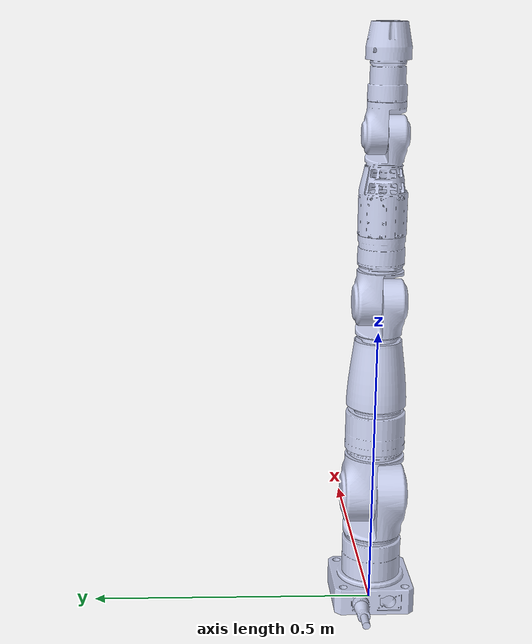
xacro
<?xml version="1.0" encoding="utf-8"?>
<robot
  name="dars_sj705_right_v2" xmlns:xacro="http://www.ros.org/wiki/xacro">
  <link
    name="right_arm_base_link">
    <inertial>
      <origin
        xyz="-0.000232318785578112 0.000416015424662894 0.0612685506045317"
        rpy="0 0 0" />
      <mass
        value="1.12130208690655" />
      <inertia
        ixx="0.00286886307136703"
        ixy="4.17544432151409E-05"
        ixz="-9.93567541743646E-06"
        iyy="0.0029383884751674"
        iyz="1.77373992319681E-05"
        izz="0.00302949300291083" />
    </inertial>
    <visual>
      <origin
        xyz="0 0 0"
        rpy="0 0 0" />
      <geometry>
        <mesh
          filename="package://dars_sj705_right_v2/meshes/right_arm_base_link.STL" />
      </geometry>
      <material
        name="">
        <color
          rgba="0.792156862745098 0.819607843137255 0.933333333333333 1" />
      </material>
    </visual>
    <collision>
      <origin
        xyz="0 0 0"
        rpy="0 0 0" />
      <geometry>
        <mesh
          filename="package://dars_sj705_right_v2/meshes/right_arm_base_link.STL" />
      </geometry>
    </collision>
  </link>
  <link
    name="right_arm_link1">
    <inertial>
      <origin
        xyz="0.0220149261630286 0.00142034167800786 0.0193862748312547"
        rpy="0 0 0" />
      <mass
        value="0.704732839762444" />
      <inertia
        ixx="0.000841245072195673"
        ixy="-3.13917654602522E-05"
        ixz="0.000242271053954912"
        iyy="0.00130262300294707"
        iyz="3.566707645658E-05"
        izz="0.00144924276277079" />
    </inertial>
    <visual>
      <origin
        xyz="0 0 0"
        rpy="0 0 0" />
      <geometry>
        <mesh
          filename="package://dars_sj705_right_v2/meshes/right_arm_link1.STL" />
      </geometry>
      <material
        name="">
        <color
          rgba="0.792156862745098 0.819607843137255 0.933333333333333 1" />
      </material>
    </visual>
    <collision>
      <origin
        xyz="0 0 0"
        rpy="0 0 0" />
      <geometry>
        <mesh
          filename="package://dars_sj705_right_v2/meshes/right_arm_link1.STL" />
      </geometry>
    </collision>
  </link>
  <joint
    name="right_arm_joint1"
    type="revolute">
    <origin
      xyz="0 0 0.206"
      rpy="1.5713 1.5708 0.00093827" />
    <parent
      link="right_arm_base_link" />
    <child
      link="right_arm_link1" />
    <axis
      xyz="-1 0 0" />

    <limit
      lower="-3.1416"
      upper="3.1416"
      effort="10"
      velocity="0.791943" />

  </joint>
  <link
    name="right_arm_link2">
    <inertial>
      <origin
        xyz="-0.068378 0.00074558 -0.010176"
        rpy="0 0 0" />
      <mass
        value="1.3425" />
      <inertia
        ixx="0.001824"
        ixy="-1.5016E-05"
        ixz="0.00087569"
        iyy="0.0053618"
        iyz="-2.6448E-05"
        izz="0.0053833" />
    </inertial>
    <visual>
      <origin
        xyz="0 0 0"
        rpy="0 0 0" />
      <geometry>
        <mesh
          filename="package://dars_sj705_right_v2/meshes/right_arm_link2.STL" />
      </geometry>
      <material
        name="">
        <color
          rgba="0.79216 0.81961 0.93333 1" />
      </material>
    </visual>
    <collision>
      <origin
        xyz="0 0 0"
        rpy="0 0 0" />
      <geometry>
        <mesh
          filename="package://dars_sj705_right_v2/meshes/right_arm_link2.STL" />
      </geometry>
    </collision>
  </link>
  <joint
    name="right_arm_joint2"
    type="revolute">
    <origin
      xyz="0 0 0"
      rpy="0 0 0" />
    <parent
      link="right_arm_link1" />
    <child
      link="right_arm_link2" />
    <axis
      xyz="0 0 -1" />

    <limit lower="-${6.2832*0.125}" upper="${6.2832*0.25}" effort="10" velocity="0.791943" />
  </joint>
  <link
    name="right_arm_link3">
    <inertial>
      <origin
        xyz="0.0962526032515294 -0.000317619687560833 -0.00470771491343655"
        rpy="0 0 0" />
      <mass
        value="1.07736180460667" />
      <inertia
        ixx="0.00117795652489407"
        ixy="-1.84277576080779E-05"
        ixz="-0.000469868856132839"
        iyy="0.00458889628240855"
        iyz="5.93124175129157E-06"
        izz="0.00456075702329967" />
    </inertial>
    <visual>
      <origin
        xyz="0 0 0"
        rpy="0 0 0" />
      <geometry>
        <mesh
          filename="package://dars_sj705_right_v2/meshes/right_arm_link3.STL" />
      </geometry>
      <material
        name="">
        <color
          rgba="0.792156862745098 0.819607843137255 0.933333333333333 1" />
      </material>
    </visual>
    <collision>
      <origin
        xyz="0 0 0"
        rpy="0 0 0" />
      <geometry>
        <mesh
          filename="package://dars_sj705_right_v2/meshes/right_arm_link3.STL" />
      </geometry>
    </collision>
  </link>
  <joint
    name="right_arm_joint3"
    type="revolute">
    <origin
      xyz="-0.35 0 0"
      rpy="3.1416 0 0" />
    <parent
      link="right_arm_link2" />
    <child
      link="right_arm_link3" />
    <axis
      xyz="-1 0 0" />
    <limit lower="-${6.2832*0.5}" upper="${6.2832*0.5}" effort="10" velocity="1.2671" />
  </joint>
  <link
    name="right_arm_link4">
    <inertial>
      <origin
        xyz="-0.0525508055834947 -0.000565914838117354 0.00838965365584191"
        rpy="0 0 0" />
      <mass
        value="0.604541213811193" />
      <inertia
        ixx="0.000479638230999798"
        ixy="3.48005401093465E-06"
        ixz="-0.000248216077247259"
        iyy="0.00146664458124825"
        iyz="-7.15931698888794E-06"
        izz="0.00146411045849462" />
    </inertial>
    <visual>
      <origin
        xyz="0 0 0"
        rpy="0 0 0" />
      <geometry>
        <mesh
          filename="package://dars_sj705_right_v2/meshes/right_arm_link4.STL" />
      </geometry>
      <material
        name="">
        <color
          rgba="0.792156862745098 0.819607843137255 0.933333333333333 1" />
      </material>
    </visual>
    <collision>
      <origin
        xyz="0 0 0"
        rpy="0 0 0" />
      <geometry>
        <mesh
          filename="package://dars_sj705_right_v2/meshes/right_arm_link4.STL" />
      </geometry>
    </collision>
  </link>
  <joint
    name="right_arm_joint4"
    type="revolute">
    <origin
      xyz="0 0 0"
      rpy="0 0 0" />
    <parent
      link="right_arm_link3" />
    <child
      link="right_arm_link4" />
    <axis
      xyz="0 0 1" />

    <limit lower="-${6.2832*0.125}" upper="${6.2832*0.25}" effort="10" velocity="1.5708" />
  </joint>
  <link
    name="right_arm_link5">
    <inertial>
      <origin
        xyz="0.0917180573564457 -0.00068276853809135 -0.00272802808810063"
        rpy="0 0 0" />
      <mass
        value="0.583482841125641" />
      <inertia
        ixx="0.000460079671762739"
        ixy="-1.20647843296169E-05"
        ixz="-0.000205865954304475"
        iyy="0.00220581180784235"
        iyz="3.07542972072111E-06"
        izz="0.00219279588550882" />
    </inertial>
    <visual>
      <origin
        xyz="0 0 0"
        rpy="0 0 0" />
      <geometry>
        <mesh
          filename="package://dars_sj705_right_v2/meshes/right_arm_link5.STL" />
      </geometry>
      <material
        name="">
        <color
          rgba="0.792156862745098 0.819607843137255 0.933333333333333 1" />
      </material>
    </visual>
    <collision>
      <origin
        xyz="0 0 0"
        rpy="0 0 0" />
      <geometry>
        <mesh
          filename="package://dars_sj705_right_v2/meshes/right_arm_link5.STL" />
      </geometry>
    </collision>
  </link>
  <joint
    name="right_arm_joint5"
    type="revolute">
    <origin
      xyz="-0.2845 0 -0.001"
      rpy="0 0 0" />
    <parent
      link="right_arm_link4" />
    <child
      link="right_arm_link5" />
    <axis
      xyz="-1 0 0" />

    <limit lower="-${6.2832*0.5}" upper="${6.2832*0.5}" effort="10" velocity="1.5708" />
  </joint>
  <link
    name="right_arm_link6">
    <inertial>
      <origin
        xyz="-0.0143927635876299 -0.000784906882398684 0.012778935820382"
        rpy="0 0 0" />
      <mass
        value="0.182938662010819" />
      <inertia
        ixx="9.01095189121663E-05"
        ixy="-2.75747911996583E-06"
        ixz="-2.73704812549745E-05"
        iyy="0.000140437660251869"
        iyz="-3.25117318155308E-06"
        izz="0.000150984184644799" />
    </inertial>
    <visual>
      <origin
        xyz="0 0 0"
        rpy="0 0 0" />
      <geometry>
        <mesh
          filename="package://dars_sj705_right_v2/meshes/right_arm_link6.STL" />
      </geometry>
      <material
        name="">
        <color
          rgba="0.792156862745098 0.819607843137255 0.933333333333333 1" />
      </material>
    </visual>
    <collision>
      <origin
        xyz="0 0 0"
        rpy="0 0 0" />
      <geometry>
        <mesh
          filename="package://dars_sj705_right_v2/meshes/right_arm_link6.STL" />
      </geometry>
    </collision>
  </link>
  <joint
    name="right_arm_joint6"
    type="revolute">
    <origin
      xyz="0 0 0"
      rpy="0 0 0" />
    <parent
      link="right_arm_link5" />
    <child
      link="right_arm_link6" />
    <axis
      xyz="0 0 1" />

    <limit lower="-${6.2832*0.125}" upper="${6.2832*0.25}" effort="10" velocity="1.5708" />
  </joint>
  <link
    name="right_arm_link7">
    <inertial>
      <origin
        xyz="3.11470840513306E-05 -4.64463006477622E-06 0.0302070449645091"
        rpy="0 0 0" />
      <mass
        value="0.188871414175569" />
      <inertia
        ixx="0.000110402713847328"
        ixy="-1.36008744459275E-07"
        ixz="1.43774227050942E-07"
        iyy="0.000109141813922723"
        iyz="-2.14696469760054E-08"
        izz="8.96138601621845E-05" />
    </inertial>
    <visual>
      <origin
        xyz="0 0 0"
        rpy="0 0 0" />
      <geometry>
        <mesh
          filename="package://dars_sj705_right_v2/meshes/right_arm_link7.STL" />
      </geometry>
      <material
        name="">
        <color
          rgba="0.792156862745098 0.819607843137255 0.933333333333333 1" />
      </material>
    </visual>
    <collision>
      <origin
        xyz="0 0 0"
        rpy="0 0 0" />
      <geometry>
        <mesh
          filename="package://dars_sj705_right_v2/meshes/right_arm_link7.STL" />
      </geometry>
    </collision>
  </link>
  <joint
    name="right_arm_joint7"
    type="revolute">
    <origin
      xyz="-0.05 0 0"
      rpy="-1.5708 0 1.5708" />
    <parent
      link="right_arm_link6" />
    <child
      link="right_arm_link7" />
    <axis
      xyz="0 0 1" />

    <limit lower="-${6.2832*1}" upper="${6.2832*1}" effort="10" velocity="1.5708" />
  </joint>
  <link
    name="right_EE_link">
    <inertial>
      <origin
        xyz="0.000145304658732415 -0.000145305124990724 0.0265636911624656"
        rpy="0 0 0" />
      <mass
        value="0.117155030983131" />
      <inertia
        ixx="9.19163408301501E-05"
        ixy="-4.98698287549382E-07"
        ixz="-7.21486726297052E-07"
        iyy="9.12600356252085E-05"
        iyz="7.21485968725767E-07"
        izz="9.20675938750006E-05" />
    </inertial>
    <visual>
      <origin
        xyz="0 0 0"
        rpy="0 0 0" />
      <geometry>
        <mesh
          filename="package://dars_sj705_right_v2/meshes/right_EE_link.STL" />
      </geometry>
      <material
        name="">
        <color
          rgba="0.792156862745098 0.819607843137255 0.933333333333333 1" />
      </material>
    </visual>
    <collision>
      <origin
        xyz="0 0 0"
        rpy="0 0 0" />
      <geometry>
        <mesh
          filename="package://dars_sj705_right_v2/meshes/right_EE_link.STL" />
      </geometry>
    </collision>
  </link>
  <joint
    name="right_EE_joint"
    type="fixed">
    <origin
      xyz="0 0 0.0665"
      rpy="0 0 0" />
    <parent
      link="right_arm_link7" />
    <child
      link="right_EE_link" />
    <axis
      xyz="0 0 0" />
  </joint>
</robot>
